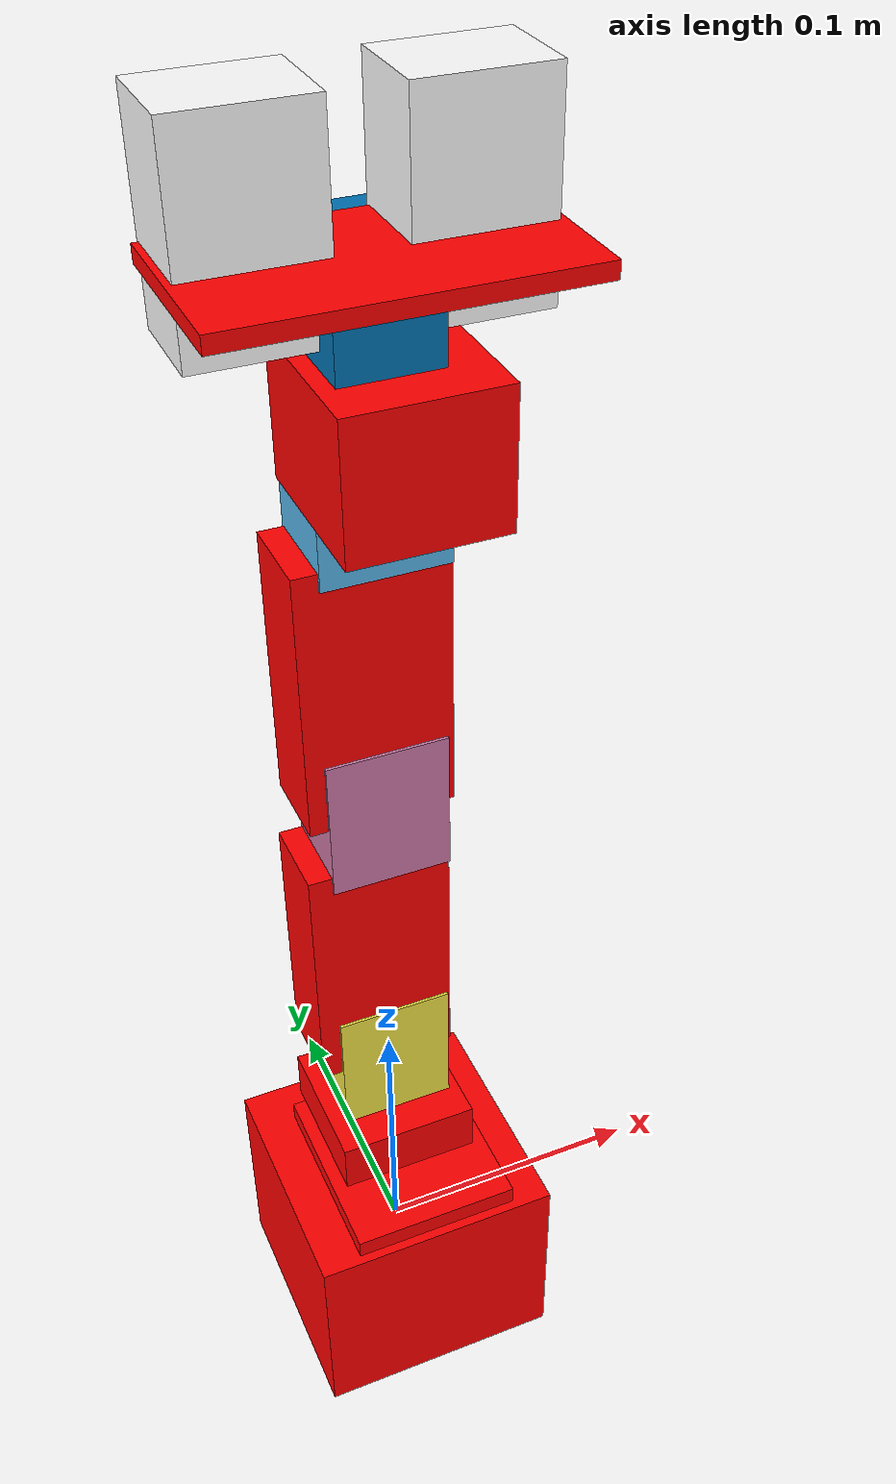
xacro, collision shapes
<?xml version="1.0"?>

<robot name="arm" xmlns:xacro="http://www.ros.org/wiki/xacro">

  <material name="red">
    <color rgba="1 0 0 1"/>
  </material>

  <link name="base_link">
    <visual>
      <geometry>
        <mesh filename="package://armando_gazebo/meshes/base_link.stl" scale="0.001 0.001 0.001"/>
      </geometry>
      <origin rpy="0 0 0" xyz="0 0 0"/>
      <material name="red"/>
    </visual>
    <collision>
      <geometry>
        <box size = "0.09 0.09 0.08"/>
      </geometry>
      <origin rpy="0 0 0" xyz="0 0 0"/>
    </collision>
    <inertial>
      <mass value="0.1"/>
      <inertia ixx="1.06682889e+08" ixy="0.0" ixz="0.0" iyy="9.92165844e+07" iyz="0.0" izz="1.26939175e+08"/>
    </inertial>
  </link>

  <joint name="base_1_2" type="fixed">
    <parent link="base_link"/>
    <child link="base_turn"/>
    <origin xyz="-0.0011 -0.011 0.05"/>
  </joint>

  <link name="base_turn">
    <visual>
      <geometry>
        <mesh filename="package://armando_gazebo/meshes/base_turn.stl" scale="0.001 0.001 0.001"/>
      </geometry>
      <origin rpy="0 0 0" xyz="0 0 0"/>
      <material name="red"/>
    </visual>
    <collision>
      <geometry>
          <box size = "0.06 0.07 0.007"/>
        </geometry>
      <origin rpy="0 0 0" xyz="0 0 0"/>
    </collision>
    <inertial>
      <mass value="0.1"/>
      <inertia ixx="1.35223008e+07" ixy="0.0" ixz="0.0" iyy="8.13814925e+06" iyz="0.0" izz="2.14903814e+07"/>
    </inertial>
  </link>

  <joint name="j0" type="revolute">
    <parent link="base_turn"/>
    <child link="base_turn_rot"/>
    <origin xyz="-0.0 0.0155 0.013" rpy = "0 0 -1.57"/>
    <axis xyz="0 0 1" />
    <limit effort="300" velocity="0.1" lower="-2.57" upper="2.57"/>
  </joint>

  <link name="base_turn_rot">
    <visual>
      <geometry>
        <mesh filename="package://armando_gazebo/meshes/base_turn_table_rot.stl" scale="0.001 0.001 0.001"/>
      </geometry>
      <material name="red"/>
    </visual>
    <collision>
      <geometry>
          <box size = "0.05 0.05 0.02"/>
        </geometry>
      <origin rpy="0 0 0" xyz="0 0 0"/>
    </collision>

    <inertial>
      <mass value="0.1"/>
      <inertia ixx="0.001" ixy="0.0" ixz="0.0" iyy="0.001" iyz="0.0" izz="0.001"/>
    </inertial>
  </link>

  <joint name="base_turn_rot_dyn2" type="fixed">
    <parent link="base_turn_rot"/>
    <child link="dyn2"/>
    <origin xyz="0 0 0.0385" rpy="0 1.57 1.57 "/>
  </joint>

  <link name="dyn2">
    <visual>
      <geometry>
        <mesh filename="package://armando_gazebo/meshes/dyn.stl" scale="0.01 0.01 0.01"/>
      </geometry>

      <origin rpy="0 0 0" xyz="0 0 0"/>
    </visual>
    <collision>
      <geometry>
          <box size = "0.05 0.03 0.04"/>
        </geometry>
      <origin rpy="0 0 0" xyz="0 0 0"/>
    </collision>
     <inertial>
      <mass value="0.1"/>
      <inertia ixx="6.90013881e-05" ixy="0.0" ixz="0.0" iyy="1.24554875e-04" iyz="0.0" izz="1.04295793e-04"/>
    </inertial>
  </link>

  <joint name="j1" type="revolute">
    <parent link="dyn2"/>
    <child link="dyn2_r"/>
    <origin xyz="0 0 0.0" rpy="0 0 0"/>
    <axis xyz="0 0 1" />
    <limit effort="300" velocity="0.1" lower="-3.14" upper="3.14"/>
  </joint>

  <link name="dyn2_r">

  </link>

  <joint name="dyn2_f4" type="fixed">
    <parent link="dyn2_r"/>
    <child link="f4"/>
    <origin xyz="-0.047 0.0 -0.003" rpy="0 1.57 1.57"/>
  </joint>

  <link name="f4">
    <visual>
      <geometry>
        <mesh filename="package://armando_gazebo/meshes/f4_n_f3.stl" scale="0.001 0.001 0.001"/>
      </geometry>
      <origin rpy="0 0 0" xyz="0 0 0"/>
      <material name="red"/>
    </visual>
    <collision>
      <geometry>
          <box size = "0.048 0.091 0.028"/>
        </geometry>
      <origin rpy="0 0 0" xyz="0 0 0"/>
    </collision>
     <inertial>
      <mass value="0.1"/>
      <inertia ixx="6.90013881e-05" ixy="0.0" ixz="0.0" iyy="1.24554875e-04" iyz="0.0" izz="1.04295793e-04"/>
    </inertial>
  </link>

  <joint name="d4_dyn3" type="fixed">
    <parent link="f4"/>
    <child link="dyn3"/>
    <origin xyz="-0.004 0.0645 0 " rpy="-1.57 3.14 1.57"/>
  </joint>

  <link name="dyn3">
    <visual>
      <geometry>
        <mesh filename="package://armando_gazebo/meshes/dyn.stl" scale="0.01 0.01 0.01"/>
      </geometry>
      <origin rpy="0 0 0" xyz="0 0 0"/>
    </visual>
    <collision>
      <geometry>
          <box size = "0.05 0.03 0.04"/>
        </geometry>
      <origin rpy="0 0 0" xyz="0 0 0"/>
    </collision>
     <inertial>
      <mass value="0.1"/>
      <inertia ixx="6.90013881e-05" ixy="0.0" ixz="0.0" iyy="1.24554875e-04" iyz="0.0" izz="1.04295793e-04"/>
    </inertial>
  </link>

  <joint name="j2" type="revolute">
    <parent link="dyn3"/>
    <child link="dyn3_r"/>
    <origin xyz="0 0 0.0" rpy="0 0 0"/>
    <axis xyz="0 0 1" />
    <limit effort="300" velocity="0.1" lower="-3.14" upper="3.14"/>
  </joint>

 <link name="dyn3_r">

  </link>

  <joint name="dyn3_f5" type="fixed">
    <parent link="dyn3_r"/>
    <child link="f5"/>
    <origin xyz="-0.046 -0.0 -0.002" rpy="1.57 1.57 3.1415 "/>
  </joint>

  <link name="f5">
    <visual>
      <geometry>
        <mesh filename="package://armando_gazebo/meshes/f4_n_f3.stl" scale="0.001 0.001 0.001"/>
      </geometry>
      <origin rpy="0 0 0" xyz="0 0 0"/>
      <material name="red"/>
    </visual>
    <collision>
      <geometry>
          <box size = "0.048 0.091 0.028"/>
        </geometry>
      <origin rpy="0 0 0" xyz="0 0 0"/>
    </collision>

    <inertial>
      <mass value="0.1"/>
  <inertia ixx="0.001" ixy="0.0" ixz="0.0" iyy="0.001" iyz="0.0" izz="0.001"/>    </inertial>
  </link>

  <joint name="f5_dyn4" type="fixed">
    <parent link="f5"/>
    <child link="dyn4"/>
    <origin xyz="-0.004 0.065 -0.0" rpy="-1.57 3.1415 1.57 "/>
  </joint>

  <link name="dyn4">
    <visual>
      <geometry>
        <mesh filename="package://armando_gazebo/meshes/dyn.stl" scale="0.01 0.01 0.01"/>
      </geometry>

      <origin rpy="0 0 0" xyz="0 0 0"/>
    </visual>
    <collision>
      <geometry>
          <box size = "0.05 0.03 0.04"/>
        </geometry>
      <origin rpy="0 0 0" xyz="0 0 0"/>
    </collision>

    <inertial>
      <mass value="0.1"/>
      <inertia ixx="6.90013881e-05" ixy="0.0" ixz="0.0" iyy="1.24554875e-04" iyz="0.0" izz="1.04295793e-04"/>
    </inertial>
  </link>

  <joint name="j3" type="revolute">
    <parent link="dyn4"/>
    <child link="dyn4_r"/>
    <origin xyz="0 0 0.0" rpy="0 0 0"/>
    <axis xyz="0 0 1" />
    <limit effort="300" velocity="0.1" lower="-3.14" upper="3.14"/>
  </joint>

  <link name="dyn4_r">

  </link>

  <joint name="f5_wrist" type="fixed">
    <parent link="dyn4_r"/>
    <child link="wrist"/>
    <origin xyz="-0.017 -0.013 0.003" rpy="1.57 1.57 -1.57"/>
  </joint>

  <link name="wrist">
    <visual>
      <geometry>
        <mesh filename="package://armando_gazebo/meshes/wrist.stl" scale="0.001 0.001 0.001"/>
      </geometry>
      <origin rpy="0 0 0" xyz="0 0 0"/>
      <material name="red"/>
    </visual>
    <collision>
      <geometry>
        <box size = "0.048 0.054 0.042"/>
      </geometry>
      <origin rpy="0 0 0" xyz="0 0 0"/>
    </collision>

     <inertial>
      <mass value="0.1"/>
      <inertia ixx="6.90013881e-05" ixy="0.0" ixz="0.0" iyy="1.24554875e-04" iyz="0.0" izz="1.04295793e-04"/>
    </inertial>
  </link>

  <joint name="wrist_dyn5" type="fixed">
    <parent link="wrist"/>
    <child link="dyn5"/>
    <origin xyz="0.0038 -0.013 0.0275" rpy="0 0 1.57"/>
  </joint>

    <link name="dyn5">
    <visual>
      <geometry>
        <mesh filename="package://armando_gazebo/meshes/dyn.stl" scale="0.01 0.01 0.01"/>
      </geometry>
      <origin rpy="0 0 0" xyz="0 0 0"/>
    </visual>
    <collision>
      <geometry>
          <box size = "0.05 0.03 0.04"/>
        </geometry>
      <origin rpy="0 0 0" xyz="0 0 0"/>
    </collision>

    <inertial>
      <mass value="0.1"/>
      <inertia ixx="6.90013881e-05" ixy="0.0" ixz="0.0" iyy="1.24554875e-04" iyz="0.0" izz="1.04295793e-04"/>
    </inertial>
  </link>

  <joint name="dyn5_dyn5_r" type="fixed">
    <parent link="dyn5"/>
    <child link="dyn5_r"/>
    <origin xyz="0 0 0.0" rpy="0 0 0"/>
    <axis xyz="0 0 1" />
    <limit effort="300" velocity="0.1" lower="-3.14" upper="3.14"/>
  </joint>

  <link name="dyn5_r">

  </link>

  <joint name="wrist_rotate_dyn5" type="fixed">
    <parent link="dyn5_r"/>
    <child link="crawer_base"/>
    <origin xyz="0.015 0 0.019" rpy="0 0 1.57"/>
  </joint>

  <link name="crawer_base">
    <visual>
      <geometry>
        <mesh filename="package://armando_gazebo/meshes/the_crawer_base.stl" scale="0.001 0.001 0.001"/>
      </geometry>
      <origin rpy="0 0 0" xyz="0 0 0"/>
      <material name="red"/>
    </visual>
    <collision>
      <geometry>
          <box size = "0.104 0.057 0.005"/>
        </geometry>
      <origin rpy="0 0 0" xyz="0 0 0"/>
    </collision>

    <inertial>
      <mass value="0.1"/>
      <inertia ixx="6.90013881e-05" ixy="0.0" ixz="0.0" iyy="1.24554875e-04" iyz="0.0" izz="1.04295793e-04"/>
    </inertial>
  </link>

  <joint name="crawer_base_crawer_left" type="fixed">
    <parent link="crawer_base"/>
    <child link="crawer_left"/>
    <origin xyz="-0.03 0.015 0.01" rpy="0 -1.57 0"/>
  </joint>

  <link name="crawer_left">
    <visual>
      <geometry>
        <mesh filename="package://armando_gazebo/meshes/the_crawer.stl" scale="0.001 0.001 0.001"/>
      </geometry>
      <origin rpy="0 0 0" xyz="0 0 0"/>
      <material name="white">
        <color rgba="1 1 1 1"/>
      </material>
    </visual>
    <collision>
      <geometry>
          <box size = "0.06 0.03 0.04"/>
        </geometry>
      <origin rpy="0 0 0" xyz="0 0 0"/>
    </collision>

    <inertial>
      <mass value="0.1"/>
      <inertia ixx="6.90013881e-05" ixy="0.0" ixz="0.0" iyy="1.24554875e-04" iyz="0.0" izz="1.04295793e-04"/>
    </inertial>
  </link>

  <joint name="crawer_base_crawer_right" type="fixed">
    <parent link="crawer_base"/>
    <child link="crawer_right"/>
    <origin xyz="0.03 0.015 0.01" rpy="3.1415 -1.57 0"/>
  </joint>

  <link name="crawer_right">
    <visual>
      <geometry>
        <mesh filename="package://armando_gazebo/meshes/the_crawer.stl" scale="0.001 0.001 0.001"/>
      </geometry>
      <origin rpy="0 0 0" xyz="0 0 0"/>
      <material name="white">
        <color rgba="1 1 1 1"/>
      </material>
    </visual>
    <collision>
      <geometry>
          <box size = "0.06 0.03 0.04"/>
        </geometry>
      <origin rpy="0 0 0" xyz="0 0 0"/>
    </collision>

    <inertial>
      <mass value="0.1"/>
      <inertia ixx="6.90013881e-05" ixy="0.0" ixz="0.0" iyy="1.24554875e-04" iyz="0.0" izz="1.04295793e-04"/>
    </inertial>
  </link>

  <gazebo>
    <plugin filename="ign_ros2_control-system" name="ign_ros2_control::IgnitionROS2ControlPlugin">
    <parameters>$(find armando_gazebo)/config_armando_gz/armando_controllers.yaml</parameters>
      <controller_manager_prefix_node_name>controller_manager</controller_manager_prefix_node_name>
    </plugin>
  </gazebo>

  <xacro:include filename="$(find armando_description)/urdf/armando_hardware_interface.xacro"/>

  <xacro:arg name="j0" default="0.0"/>
  <xacro:arg name="j1" default="0.0"/>
  <xacro:arg name="j2" default="0.0"/>
  <xacro:arg name="j3" default="0.0"/>

  <ros2_control name="PositionJointInterface" type="system">

    <hardware>
      <plugin>ign_ros2_control/IgnitionSystem</plugin>
    </hardware>

    <xacro:joint_ros2_control name="j0" initial_pos="$(arg j0)"/>
    <xacro:joint_ros2_control name="j1" initial_pos="$(arg j1)"/>
    <xacro:joint_ros2_control name="j2" initial_pos="$(arg j2)"/>
    <xacro:joint_ros2_control name="j3" initial_pos="$(arg j3)"/>

  </ros2_control>

   <xacro:include filename="$(find armando_gazebo)/urdf/armando_camera.xacro"/>

   <xacro:armando_camera name="armando_camera" armando_camera_pos="0.0 0.0 -0.005" armando_camera_rpy="0.0 0.0 0.0" armando_camera_scale="0.05 0.05 0.05"/>

</robot>

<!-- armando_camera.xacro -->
<robot xmlns:xacro="http://www.ros.org/wiki/xacro">

<xacro:macro name="armando_camera" params="name armando_camera_pos armando_camera_rpy armando_camera_scale">

  <joint name="camera_joint" type="fixed">
      <parent link="base_link"/>
      <child link="camera_link"/>
      <origin xyz="${armando_camera_pos}" rpy="${armando_camera_rpy}"/>
  </joint>

  <link name="camera_link">
      <visual>
          <geometry>
              <box size="${armando_camera_scale}"/>
          </geometry>
          <material name="blue">
            <color rgba="0 0 1 1"/>
          </material>
      </visual>

    <inertial>
      <origin xyz="0 0 0" rpy="0 0 0"/>
      <mass value="0.01"/>
      <inertia ixx="1e-6" iyy="1e-6" izz="1e-6" ixy="0" ixz="0" iyz="0"/>
    </inertial>

  </link>

  <gazebo>
	  <plugin filename="gz-sim-sensors-system"
		name="gz::sim::systems::Sensors">
		<render_engine>ogre2</render_engine>
	</plugin>
  </gazebo>

  <gazebo reference="camera_link">
  <sensor name="camera" type="camera">
    <camera>
      <horizontal_fov>1.047</horizontal_fov>
      <image>
        <width>320</width>
        <height>240</height>
      </image>
      <clip>
        <near>0.1</near>
        <far>100</far>
      </clip>
    </camera>
    <always_on>1</always_on>
    <update_rate>30</update_rate>
    <visualize>true</visualize>
    <topic>camera</topic>
  </sensor>
</gazebo>

</xacro:macro>

</robot>
